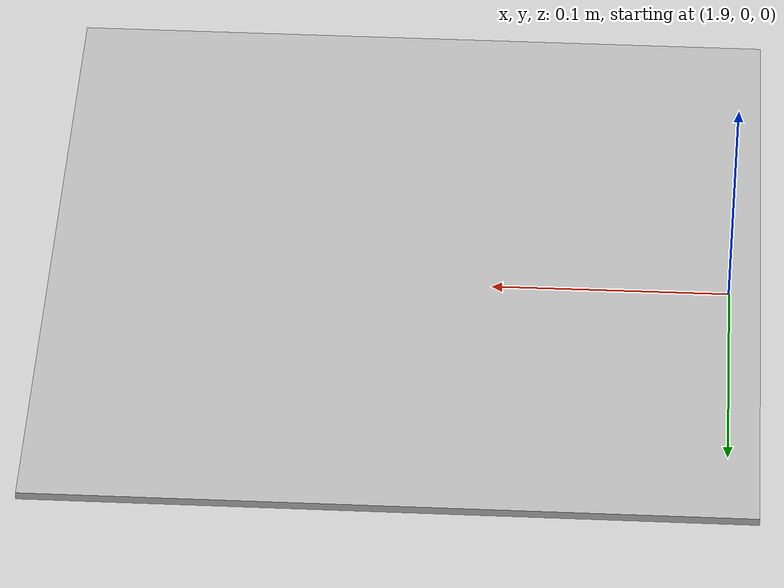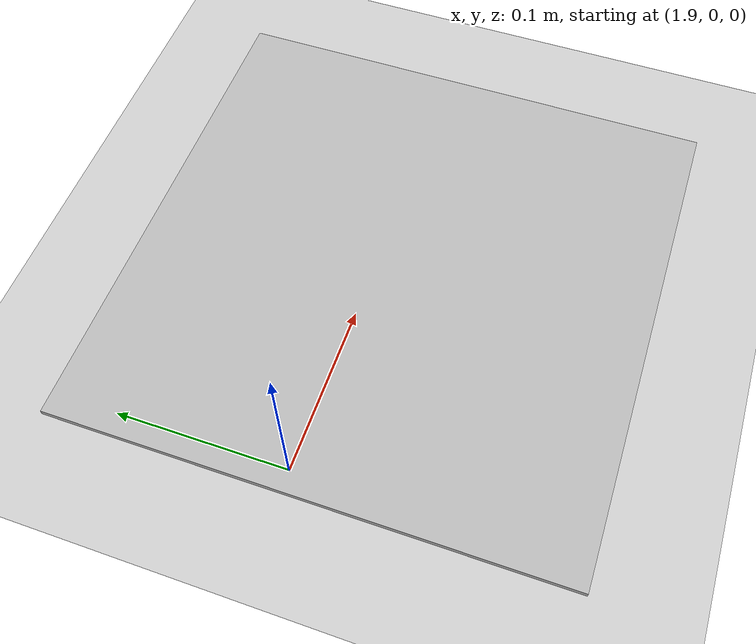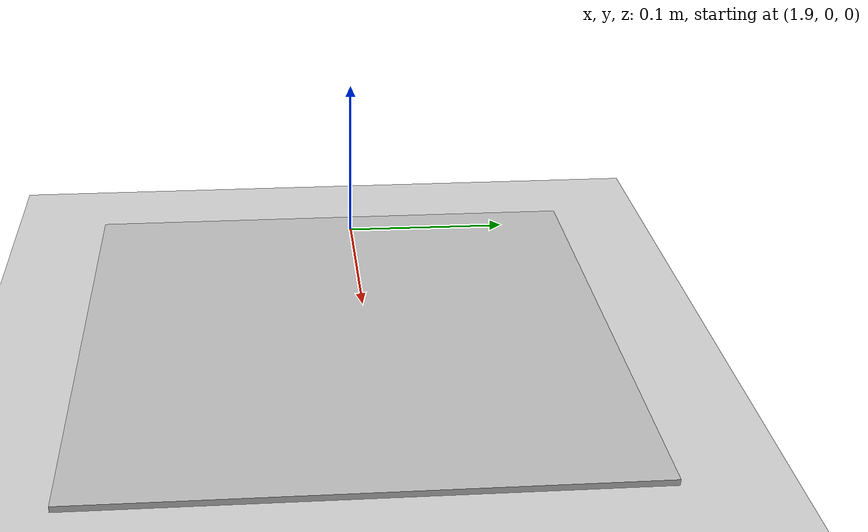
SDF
<sdf version="1.7">
 <world name="default">
  <light name="sun" type="directional">
   <pose>0 0 10 0 -0 0</pose>
   <diffuse>0.8 0.8 0.8 1</diffuse>
   <specular>0.2 0.2 0.2 1</specular>
   <attenuation>
    <range>1000</range>
    <constant>0.9</constant>
    <linear>0.01</linear>
    <quadratic>0.001</quadratic>
   </attenuation>
   <direction>-0.5 0.1 -0.9</direction>
   <spot><inner_angle>0</inner_angle><outer_angle>0</outer_angle><falloff>0</falloff></spot>
  </light>
  <model name="ground_plane">
   <static>1</static>
   <link name="link">
    <collision name="collision">
     <geometry><plane><normal>0 0 1</normal><size>100 100</size></plane></geometry>
     <surface>
      <contact><collide_bitmask>65535</collide_bitmask></contact>
      <friction><ode><mu>100</mu><mu2>50</mu2></ode></friction>
     </surface>
    </collision>
    <visual name="visual">
     <cast_shadows>0</cast_shadows>
     <geometry><plane><normal>0 0 1</normal><size>100 100</size></plane></geometry>
     <material>
      <script><uri>file://media/materials/scripts/gazebo.material</uri><name>Gazebo/Grey</name></script>
     </material>
    </visual>
   </link>
  </model>
  <physics name="default_physics" default="0" type="ode">
   <ode>
    <solver>
     <type>quick</type>
     <iters>10</iters>
     <sor>1.3</sor>
     <use_dynamic_moi_rescaling>0</use_dynamic_moi_rescaling>
    </solver>
    <constraints>
     <cfm>0</cfm>
     <erp>0.2</erp>
     <contact_max_correcting_vel>100</contact_max_correcting_vel>
     <contact_surface_layer>0.001</contact_surface_layer>
    </constraints>
   </ode>
   <max_step_size>0.004</max_step_size>
   <real_time_factor>1</real_time_factor>
   <real_time_update_rate>250</real_time_update_rate>
  </physics>
  <gravity>0 0 -9.8066</gravity>
  <magnetic_field>6e-06 2.3e-05 -4.2e-05</magnetic_field>
  <atmosphere type="adiabatic"/>
  <scene><ambient>0.4 0.4 0.4 1</ambient><background>0.7 0.7 0.7 1</background><shadows>1</shadows></scene>
  <spherical_coordinates>
   <surface_model>EARTH_WGS84</surface_model>
   <latitude_deg>0</latitude_deg>
   <longitude_deg>0</longitude_deg>
   <elevation>0</elevation>
   <heading_deg>0</heading_deg>
  </spherical_coordinates>
  <model name="Marker1">
   <static>1</static>
   <link name="link">
    <visual name="visual">
     <geometry><mesh><uri>model://marker1/meshes/Marker1.dae</uri><scale>0.6 0.6 0.6</scale></mesh></geometry>
    </visual>
   </link>
   <pose>2.187011 -0.011641 0 0 -1.570796 0</pose>
  </model>
 </world>
</sdf>
